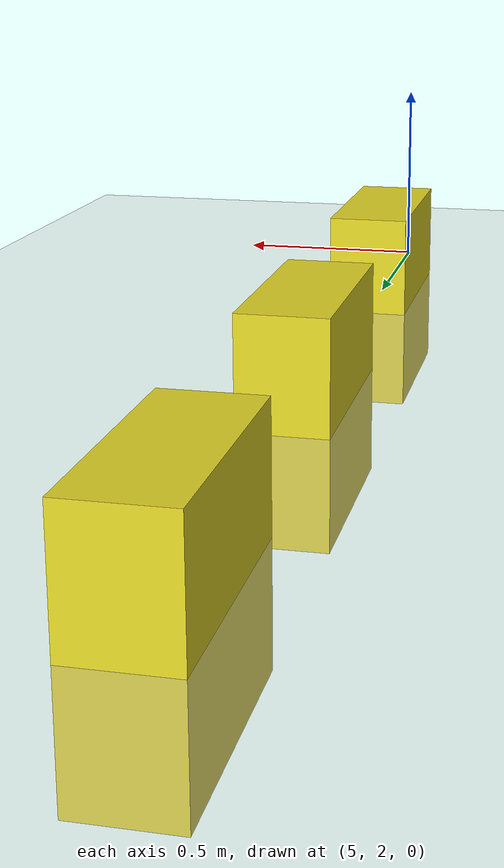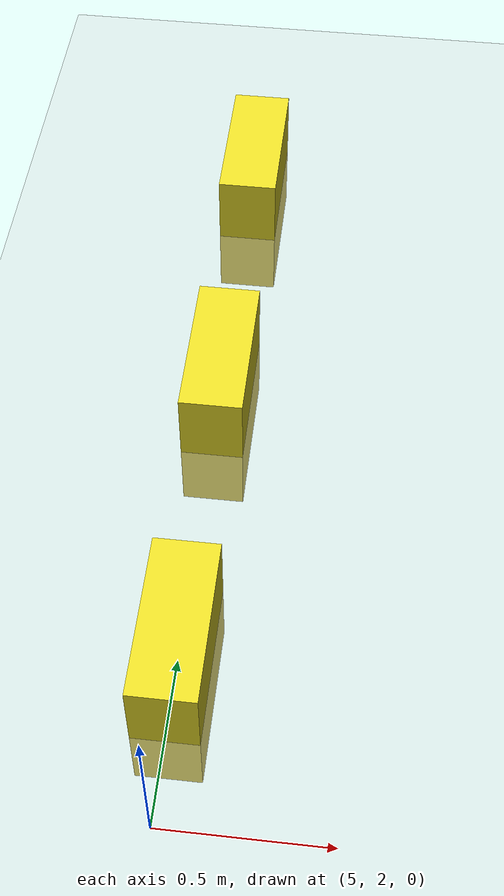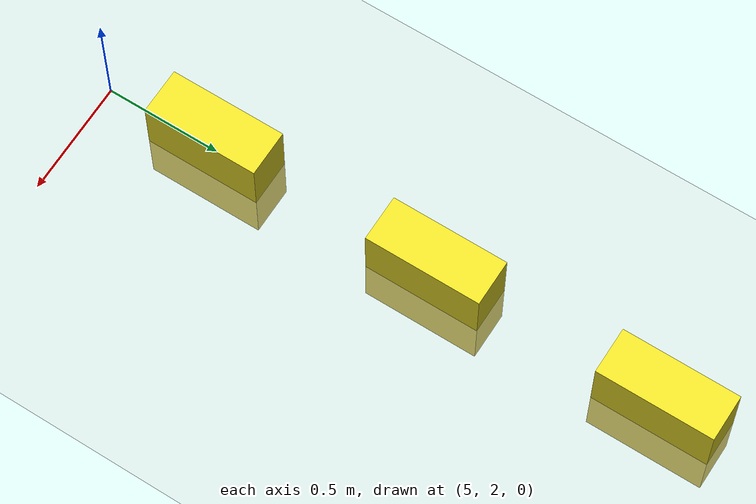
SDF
<sdf version="1.4">
  <world name="default">
    <include>
      <uri>model://ground_plane</uri>
    </include>

    <model name="lampadina">
      <static>true</static>
      <link name="link">
        <collision name="collision">
          <geometry>
            <box>
              <size>0.2 0.5 0.5</size>
            </box>
          </geometry>
        </collision>
        <visual name="visual">
          <geometry>
            <box>
              <size>0.2 0.5 0.5</size>
            </box>
          </geometry>
          <material>
            <script>
              <uri>file://media/materials/scripts/gazebo.material</uri>
              <name>Gazebo/Yellow</name>
            </script>
          </material>
        </visual>
      </link>
      <pose>5 2.5 0 0 0 0</pose>
    </model>

    <model name="lampadina_2">
      <static>true</static>
      <link name="link">
        <collision name="collision">
          <geometry>
            <box>
              <size>0.2 0.5 0.5</size>
            </box>
          </geometry>
        </collision>
        <visual name="visual">
          <geometry>
            <box>
              <size>0.2 0.5 0.5</size>
            </box>
          </geometry>
          <material>
            <script>
              <uri>file://media/materials/scripts/gazebo.material</uri>
              <name>Gazebo/Yellow</name>
            </script>
          </material>
        </visual>
      </link>
      <pose>5 3.5 0 0 0 0</pose>
    </model>

    <model name="lampadina_3">
      <static>true</static>
      <link name="link">
        <collision name="collision">
          <geometry>
            <box>
              <size>0.2 0.5 0.5</size>
            </box>
          </geometry>
        </collision>
        <visual name="visual">
          <geometry>
            <box>
              <size>0.2 0.5 0.5</size>
            </box>
          </geometry>
          <material>
            <script>
              <uri>file://media/materials/scripts/gazebo.material</uri>
              <name>Gazebo/Yellow</name>
            </script>
          </material>
        </visual>
      </link>
      <pose>5 4.5 0 0 0 0</pose>
    </model>

    <scene>
      <ambient>0.4 0.4 0.4 1</ambient>
      <background>0.7 0.7 0.7 1</background>
      <shadows>true</shadows>
    </scene>
  </world>
</sdf>
